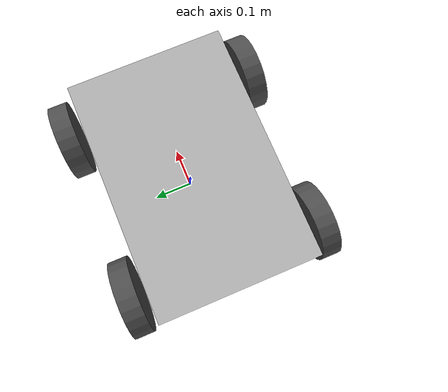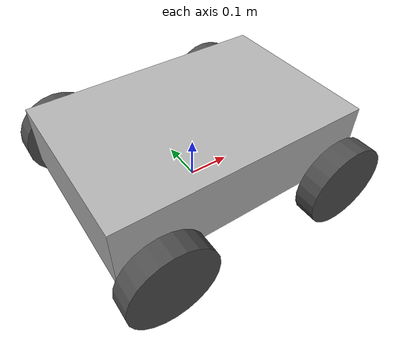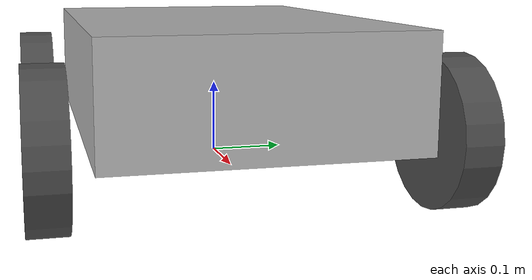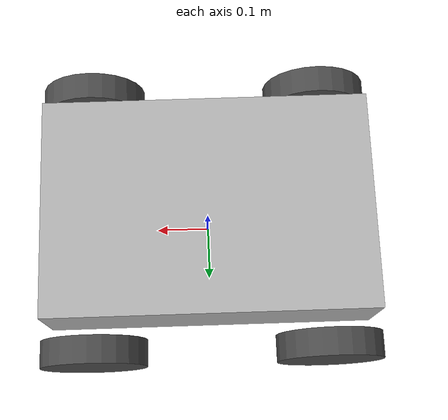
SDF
<?xml version="1.0"?>
<sdf version="1.9">
  <model name="scout">

    <!-- Base chassis -->
    <link name="base_link">
      <pose>0 0 0.12 0 0 0</pose>
      <inertial>
        <mass>44</mass>
        <inertia>
          <ixx>0.66917</ixx>
          <ixy>0</ixy>
          <ixz>0</ixz>
          <iyy>1.40250</iyy>
          <iyz>0</iyz>
          <izz>1.90667</izz>
        </inertia>
      </inertial>
      <collision name="base_collision">
        <geometry>
          <box>
            <size>0.6 0.4 0.15</size>
          </box>
        </geometry>
      </collision>
      <visual name="base_visual">
        <geometry>
          <box>
            <size>0.6 0.4 0.15</size>
          </box>
        </geometry>
        <material>
          <ambient>0.7 0.7 0.7 1</ambient>
          <diffuse>0.7 0.7 0.7 1</diffuse>
        </material>
      </visual>

      <!-- IMU sensor -->
      <sensor name="imu_sensor" type="imu">
        <always_on>true</always_on>
        <update_rate>100</update_rate>
        <topic>imu</topic>
      </sensor>

      <!-- Depth camera -->
      <sensor name="depth_camera_sensor" type="depth_camera">
        <pose relative_to="base_link">0.3 0 0.05 0 0 0</pose>
        <update_rate>15</update_rate>
        <topic>depth_camera</topic>
        <camera>
          <horizontal_fov>1.5708</horizontal_fov>
          <image>
            <width>160</width>
            <height>120</height>
          </image>
          <clip>
            <near>0.1</near>
            <far>20.0</far>
          </clip>
        </camera>
      </sensor>
    </link>

    <!-- Front left wheel -->
    <link name="front_left_wheel">
      <pose relative_to="base_link">0.22 0.25 -0.06 -1.5708 0 0</pose>
      <inertial>
        <mass>1.5</mass>
        <inertia>
          <ixx>0.00406</ixx>
          <ixy>0</ixy>
          <ixz>0</ixz>
          <iyy>0.00406</iyy>
          <iyz>0</iyz>
          <izz>0.0075</izz>
        </inertia>
      </inertial>
      <collision name="front_left_wheel_collision">
        <geometry>
          <cylinder>
            <radius>0.1</radius>
            <length>0.05</length>
          </cylinder>
        </geometry>
        <surface>
          <friction>
            <ode>
              <mu>0.8</mu>
              <mu2>0.6</mu2>
            </ode>
          </friction>
        </surface>
      </collision>
      <visual name="front_left_wheel_visual">
        <geometry>
          <cylinder>
            <radius>0.1</radius>
            <length>0.05</length>
          </cylinder>
        </geometry>
        <material>
          <ambient>0.3 0.3 0.3 1</ambient>
          <diffuse>0.3 0.3 0.3 1</diffuse>
        </material>
      </visual>
    </link>
    <joint name="front_left_wheel_joint" type="revolute">
      <parent>base_link</parent>
      <child>front_left_wheel</child>
      <axis>
        <xyz>0 0 1</xyz>
      </axis>
    </joint>

    <!-- Front right wheel -->
    <link name="front_right_wheel">
      <pose relative_to="base_link">0.22 -0.25 -0.06 -1.5708 0 0</pose>
      <inertial>
        <mass>1.5</mass>
        <inertia>
          <ixx>0.00406</ixx>
          <ixy>0</ixy>
          <ixz>0</ixz>
          <iyy>0.00406</iyy>
          <iyz>0</iyz>
          <izz>0.0075</izz>
        </inertia>
      </inertial>
      <collision name="front_right_wheel_collision">
        <geometry>
          <cylinder>
            <radius>0.1</radius>
            <length>0.05</length>
          </cylinder>
        </geometry>
        <surface>
          <friction>
            <ode>
              <mu>0.8</mu>
              <mu2>0.6</mu2>
            </ode>
          </friction>
        </surface>
      </collision>
      <visual name="front_right_wheel_visual">
        <geometry>
          <cylinder>
            <radius>0.1</radius>
            <length>0.05</length>
          </cylinder>
        </geometry>
        <material>
          <ambient>0.3 0.3 0.3 1</ambient>
          <diffuse>0.3 0.3 0.3 1</diffuse>
        </material>
      </visual>
    </link>
    <joint name="front_right_wheel_joint" type="revolute">
      <parent>base_link</parent>
      <child>front_right_wheel</child>
      <axis>
        <xyz>0 0 1</xyz>
      </axis>
    </joint>

    <!-- Rear left wheel -->
    <link name="rear_left_wheel">
      <pose relative_to="base_link">-0.22 0.25 -0.06 -1.5708 0 0</pose>
      <inertial>
        <mass>1.5</mass>
        <inertia>
          <ixx>0.00406</ixx>
          <ixy>0</ixy>
          <ixz>0</ixz>
          <iyy>0.00406</iyy>
          <iyz>0</iyz>
          <izz>0.0075</izz>
        </inertia>
      </inertial>
      <collision name="rear_left_wheel_collision">
        <geometry>
          <cylinder>
            <radius>0.1</radius>
            <length>0.05</length>
          </cylinder>
        </geometry>
        <surface>
          <friction>
            <ode>
              <mu>0.8</mu>
              <mu2>0.6</mu2>
            </ode>
          </friction>
        </surface>
      </collision>
      <visual name="rear_left_wheel_visual">
        <geometry>
          <cylinder>
            <radius>0.1</radius>
            <length>0.05</length>
          </cylinder>
        </geometry>
        <material>
          <ambient>0.3 0.3 0.3 1</ambient>
          <diffuse>0.3 0.3 0.3 1</diffuse>
        </material>
      </visual>
    </link>
    <joint name="rear_left_wheel_joint" type="revolute">
      <parent>base_link</parent>
      <child>rear_left_wheel</child>
      <axis>
        <xyz>0 0 1</xyz>
      </axis>
    </joint>

    <!-- Rear right wheel -->
    <link name="rear_right_wheel">
      <pose relative_to="base_link">-0.22 -0.25 -0.06 -1.5708 0 0</pose>
      <inertial>
        <mass>1.5</mass>
        <inertia>
          <ixx>0.00406</ixx>
          <ixy>0</ixy>
          <ixz>0</ixz>
          <iyy>0.00406</iyy>
          <iyz>0</iyz>
          <izz>0.0075</izz>
        </inertia>
      </inertial>
      <collision name="rear_right_wheel_collision">
        <geometry>
          <cylinder>
            <radius>0.1</radius>
            <length>0.05</length>
          </cylinder>
        </geometry>
        <surface>
          <friction>
            <ode>
              <mu>0.8</mu>
              <mu2>0.6</mu2>
            </ode>
          </friction>
        </surface>
      </collision>
      <visual name="rear_right_wheel_visual">
        <geometry>
          <cylinder>
            <radius>0.1</radius>
            <length>0.05</length>
          </cylinder>
        </geometry>
        <material>
          <ambient>0.3 0.3 0.3 1</ambient>
          <diffuse>0.3 0.3 0.3 1</diffuse>
        </material>
      </visual>
    </link>
    <joint name="rear_right_wheel_joint" type="revolute">
      <parent>base_link</parent>
      <child>rear_right_wheel</child>
      <axis>
        <xyz>0 0 1</xyz>
      </axis>
    </joint>

    <!-- DiffDrive plugin -->
    <plugin filename="gz-sim-diff-drive-system" name="gz::sim::systems::DiffDrive">
      <left_joint>front_left_wheel_joint</left_joint>
      <left_joint>rear_left_wheel_joint</left_joint>
      <right_joint>front_right_wheel_joint</right_joint>
      <right_joint>rear_right_wheel_joint</right_joint>
      <wheel_separation>0.5</wheel_separation>
      <wheel_radius>0.1</wheel_radius>
      <max_linear_acceleration>0.5</max_linear_acceleration>
      <odom_publish_frequency>20</odom_publish_frequency>
      <frame_id>odom</frame_id>
      <child_frame_id>base_link</child_frame_id>
      <cmd_timeout>0.5</cmd_timeout>
    </plugin>

    <!-- JointStatePublisher plugin -->
    <plugin filename="gz-sim-joint-state-publisher-system" name="gz::sim::systems::JointStatePublisher"/>

    <plugin filename="gz-sim-pose-publisher-system"
            name="gz::sim::systems::PosePublisher">
      <publish_model_pose>true</publish_model_pose>
      <publish_link_pose>false</publish_link_pose>
      <publish_collision_pose>false</publish_collision_pose>
      <publish_visual_pose>false</publish_visual_pose>
      <publish_sensor_pose>false</publish_sensor_pose>
      <use_pose_vector_msg>true</use_pose_vector_msg>
      <update_frequency>20</update_frequency>
    </plugin>

  </model>
</sdf>
